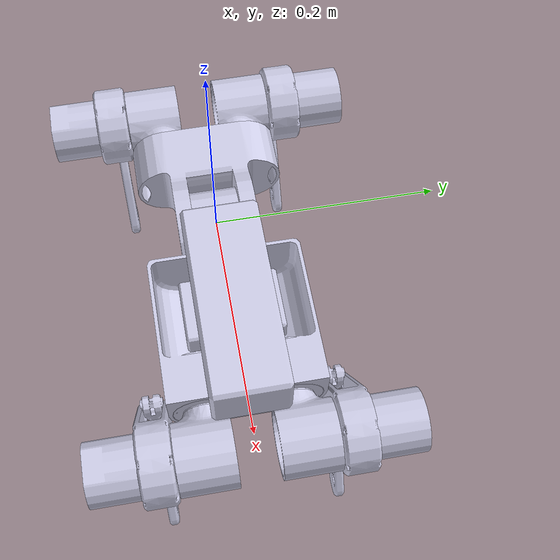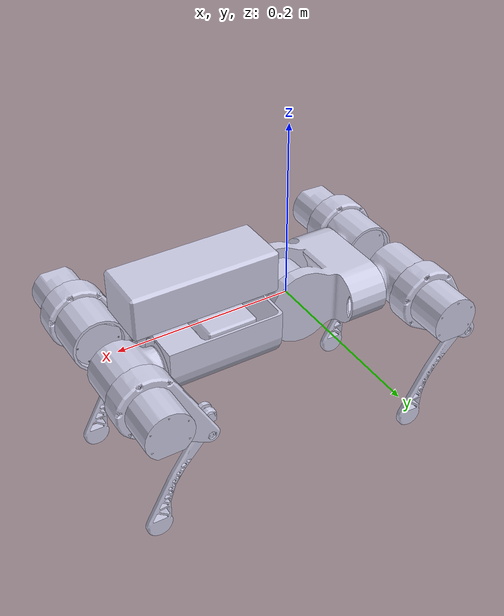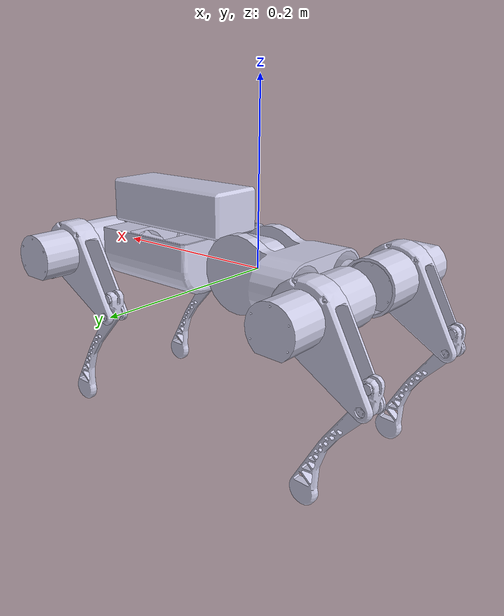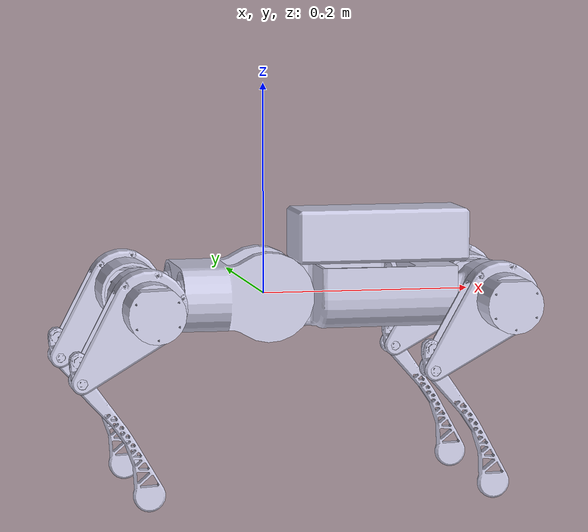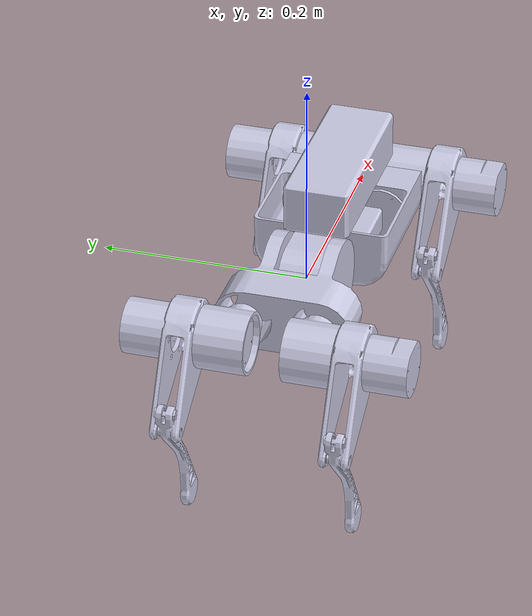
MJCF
<mujoco model="cheetah_1">
  <compiler angle="radian" meshdir="meshes/" autolimits="true"/>

  <default>
    <default class="cheetah_1">
      <default class="visual">
        <geom type="mesh" contype="0" conaffinity="0" group="2" material="dark"/>
      </default>
      <default class="collision">
        <geom group="3" type="capsule" contype="1" conaffinity="1"/>
      </default>
    </default>
  </default>

  <asset>
    <mesh name="body_front_link" file="body_front_link.stl"/>
    <mesh name="body_pitch_link" file="body_pitch_link.stl"/>
    <mesh name="spine_pitch_actuator" file="spine_pitch_actuator.stl"/>
    <mesh name="left_front_hip_roll_actuator" file="left_front_hip_roll_actuator.stl"/>
    <mesh name="right_front_hip_roll_actuator" file="right_front_hip_roll_actuator.stl"/>
    <mesh name="battery_link" file="battery_link.stl"/>
    <mesh name="bms_link" file="bms_link.stl"/>
    <mesh name="pc_link" file="pc_link.stl"/>
    <mesh name="left_front_hip_roll_link" file="left_front_hip_roll_link.stl"/>
    <mesh name="left_front_hip_pitch_link" file="left_front_hip_pitch_link.stl"/>
    <mesh name="left_front_knee_pitch_link" file="left_front_knee_pitch_link.stl"/>
    <mesh name="left_front_hip_pitch_actuator" file="left_front_hip_pitch_actuator.stl"/>
    <mesh name="left_front_knee_pitch_actuator" file="left_front_knee_pitch_actuator.stl"/>
    <mesh name="right_front_hip_roll_link" file="right_front_hip_roll_link.stl"/>
    <mesh name="right_front_hip_pitch_link" file="right_front_hip_pitch_link.stl"/>
    <mesh name="right_front_knee_pitch_link" file="right_front_knee_pitch_link.stl"/>
    <mesh name="right_front_hip_pitch_actuator" file="right_front_hip_pitch_actuator.stl"/>
    <mesh name="right_front_knee_pitch_actuator" file="right_front_knee_pitch_actuator.stl"/>
    <mesh name="left_hip_roll_link" file="left_hip_roll_link.stl"/>
    <mesh name="left_hip_pitch_link" file="left_hip_pitch_link.stl"/>
    <mesh name="left_knee_pitch_link" file="left_knee_pitch_link.stl"/>
    <mesh name="left_hip_pitch_actuator" file="left_hip_pitch_actuator.stl"/>
    <mesh name="left_knee_pitch_actuator" file="left_knee_pitch_actuator.stl"/>
    <mesh name="right_hip_roll_link" file="right_hip_roll_link.stl"/>
    <mesh name="right_hip_pitch_link" file="right_hip_pitch_link.stl"/>
    <mesh name="right_knee_pitch_link" file="right_knee_pitch_link.stl"/>
    <mesh name="right_hip_pitch_actuator" file="right_hip_pitch_actuator.stl"/>
    <mesh name="right_knee_pitch_actuator" file="right_knee_pitch_actuator.stl"/>
  </asset>

  <worldbody>
    <body name="body_front_link" pos="0 0 0" quat="1.0 0.0 0.0 0.0">
      <inertial pos="0.0954976191044652 -2.8127618750562647e-09 -0.0013255050308965738" mass="0.4074337733759366" quat="0.013752822991693484 1.6620105499176854e-08 0.9999054254577071 -2.493571172300956e-08" diaginertia="0.0006521374239635224 0.0015774590338208682 0.0018808895888569148"/>
      <geom type="mesh" mesh="body_front_link" group="0" contype="0" conaffinity="0" rgba="0.8 0.8 0.9 1"/>
      <geom name="body_front_link_collision_0" class="collision" type="box" size="0.085 0.035 0.01" pos="0.11 0 0.07" rgba="0 0 0.7 0.5"/>
      <geom name="body_front_link_collision_1" class="collision" type="cylinder" size="0.032 0.05" pos="0.11 0.035 0" euler="0 1.57 0" rgba="0 0 0.7 0.5"/>
      <geom name="body_front_link_collision_2" class="collision" type="cylinder" size="0.032 0.05" pos="0.11 -0.035 0" euler="0 1.57 0" rgba="0 0 0.7 0.5"/>
      <site name="imu" pos="0.1 0 0" group="5"/>
      <site name="head" pos="0.3 0 0" rgba="1 0 0 1" size="0.02" group="5"/>
      <freejoint name="floating_base_joint"/>
      <body name="body_pitch_link" pos="0.0 0.0 0.0" quat="1.0 0.0 0.0 0.0">
        <inertial pos="-0.027649431762743842 -3.752776116545206e-12 2.206169382102973e-12" mass="0.44170457726383566" quat="1.0 -1.4303396825818067e-09 1.216944041814955e-11 8.341423558821948e-11" diaginertia="0.0005436968070984438 0.0007411594880273456 0.00089611525850841"/>
        <geom type="mesh" mesh="body_pitch_link" group="0" contype="0" conaffinity="0" rgba="0.8 0.8 0.9 1"/>
        <geom name="body_pitch_link_collision_1" class="collision" type="cylinder" size="0.032 0.02" pos="-0.065 0.035 0" euler="0 1.57 0" rgba="0 0 0.7 0.5"/>
        <geom name="body_pitch_link_collision_2" class="collision" type="cylinder" size="0.032 0.02" pos="-0.065 -0.035 0" euler="0 1.57 0" rgba="0 0 0.7 0.5"/>
        <geom name="spine_collision" class="collision" type="sphere" size="0.055" pos="0 0 0" rgba="0 0 0.7 0.5"/>

        <joint name="body_pitch_joint" type="hinge" axis="0 1 0" range="-1 1"  armature="0.00089" frictionloss="0.01" damping="1.0" actuatorfrcrange="-17.0 17.0" stiffness="1.0" springref="0.0"  />

        <body name="left_hip_roll_link" pos="-0.08700000000000002 0.03600000000000017 -9.956824444577827e-63" quat="1.0 0.0 0.0 0.0">
          <inertial pos="-0.027997983370715348 0.004246170320840001 1.5960226731981128e-09" mass="0.05164362292808013" quat="0.7063740702082538 -0.7063743488668459 0.032178763180447205 -0.03217886574354496" diaginertia="2.582657600053341e-05 3.455590394722235e-05 4.296506602336842e-05"/>
          <geom type="mesh" mesh="left_hip_roll_link" group="0" contype="0" conaffinity="0" rgba="0.8 0.8 0.9 1"/>
          <joint name="left_hip_roll_joint" type="hinge" axis="1 0 0" range="-0.57 0.57" armature="0.00089" frictionloss="0.01" damping="0.1" actuatorfrcrange="-17.0 17.0"/>
          <body name="left_hip_pitch_link" pos="-0.035999999999999935 0.03050000000000011 1.5404344466674047e-18" quat="0.923879532511287 0.0 0.3826834323650894 0.0">
            <inertial pos="0.000608457167922225 0.012869188173909012 -0.020059873747473624" mass="0.09524690871689367" quat="-0.49739348019503443 0.48737401881355585 0.5025637349616855 0.5123436190159453" diaginertia="4.091951632713923e-05 0.00012807547862374872 0.00014646399871159844"/>
            <geom type="mesh" mesh="left_hip_pitch_link" group="0" contype="0" conaffinity="0" rgba="0.8 0.8 0.9 1"/>
            <joint name="left_hip_pitch_joint" type="hinge" axis="0 1 0" range="-1.57 1.57" armature="0.00089" frictionloss="0.01" damping="0.1" actuatorfrcrange="-17.0 17.0"/>
            <geom name="left_hip_pitch_link_collision_1" class="collision" type="capsule" size="0.025 0.040" pos="0 0.014 -0.040" rgba="0 0 0.7 0.5"/>
            <geom name="left_hip_pitch_link_collision_2" class="collision" type="cylinder" size="0.036 0.015" pos="0 0.014 0" euler="1.57 0 0" rgba="0 0 0.7 0.5"/>
            <body name="left_knee_pitch_link" pos="0.0027810046117813605 0.013500000000000376 -0.09195795785764961" quat="0.9990482215818578 0.0 0.04361938736533593 0.0">
              <inertial pos="0.023020942661646147 -2.722469951009998e-06 0.00030440480077486675" mass="0.04319852584138112" quat="0.0008317703971751127 0.09922227046188396 -0.00832134515504222 0.9950301525165988" diaginertia="3.0020026309073525e-06 0.000118097728213388 0.00011820690693985907"/>
              <geom type="mesh" mesh="left_knee_pitch_link" group="0" contype="0" conaffinity="0" rgba="0.8 0.8 0.9 1"/>
              <geom name="left_knee_pitch_link_collision_1" class="collision" type="capsule" size="0.01 0.05" pos="0.08 0 -0.01" euler="0 1.7 0" rgba="0 0 0.7 0.5"/>
              <geom name="left_knee_pitch_link_collision_2" class="collision" type="sphere" size="0.02" pos="0.12 0 -0.02" rgba="0 0 0.7 0.5"/>
              <joint name="left_knee_pitch_joint" type="hinge" axis="0 1 0" range="-1.1 0.57" armature="0.00089" frictionloss="0.01" damping="0.1" actuatorfrcrange="-17.0 17.0"/>
              <site name="RL" pos="0.12 0 -0.02" type="sphere" size="0.023" group="5"/>
            </body>
            <body name="left_knee_pitch_actuator" pos="5.452146062779414e-17 0.028000000000000087 6.3235473773489e-17" quat="0.923879532511287 0.0 -0.3826834323650894 0.0">
              <inertial pos="-9.498962391717215e-06 0.02056927011733872 0.00031409699200574993" mass="0.21064230113387258" quat="0.7763648004745358 0.630102536639915 -0.011736780053926638 0.009525644232507577" diaginertia="6.699672604688675e-05 6.832464716183116e-05 7.262836237033491e-05"/>
              <geom type="mesh" mesh="left_knee_pitch_actuator" group="0" contype="0" conaffinity="0" rgba="0.8 0.8 0.9 1"/>
              <geom name="left_knee_pitch_collision" class="collision" type="cylinder" size="0.0285 0.021" pos="0 .022 0" euler="1.57 0 0" rgba="0 0 0.7 0.5"/>
            </body>
          </body>
          <body name="left_hip_pitch_actuator" pos="-0.035999999999999935 0.03050000000000011 1.5404344466674047e-18" quat="1.0 0.0 0.0 0.0">
            <inertial pos="-7.105427357601002e-17 -0.021569270117338703 -0.0003142405936119352" mass="0.21064230113387258" quat="0.630174535012403 -0.776453511436391 -0.0 0.0" diaginertia="6.699672604688668e-05 6.832464716183102e-05 7.262836237033474e-05"/>
            <geom type="mesh" mesh="left_hip_pitch_actuator" group="0" contype="0" conaffinity="0" rgba="0.8 0.8 0.9 1"/>
          </body>
        </body>
        <body name="right_hip_roll_link" pos="-0.08700000000000012 -0.036000000000000004 0.0" quat="1.0 0.0 0.0 0.0">
          <inertial pos="-0.02799798337071539 -0.004246170320839682 -1.5960226857496609e-09" mass="0.05164362292808014" quat="0.7063740702082549 -0.7063743488668447 -0.032178763180446074 0.032178865743543734" diaginertia="2.582657600053341e-05 3.455590394722238e-05 4.296506602336849e-05"/>
          <geom type="mesh" mesh="right_hip_roll_link" group="0" contype="0" conaffinity="0" rgba="0.8 0.8 0.9 1"/>
          <joint name="right_hip_roll_joint" type="hinge" axis="1 0 0" range="-0.57 0.57" armature="0.00089" frictionloss="0.01" damping="0.1" actuatorfrcrange="-17.0 17.0"/>
          <body name="right_hip_pitch_link" pos="-0.036000000000000004 -0.0305 0.0" quat="0.923879532511287 0.0 0.3826834323650894 0.0">
            <inertial pos="0.0006048527896619849 -0.012869188173908686 -0.02005998275155355" mass="0.09524690871689367" quat="0.49737699491435766 0.4872987086749725 -0.5026385809812013 0.5123578342944233" diaginertia="4.0919516327139205e-05 0.00012807547862374858 0.00014646399871159815"/>
            <geom type="mesh" mesh="right_hip_pitch_link" group="0" contype="0" conaffinity="0" rgba="0.8 0.8 0.9 1"/>
            <joint name="right_hip_pitch_joint" type="hinge" axis="0 1 0" range="-1.57 1.57" armature="0.00089" frictionloss="0.01" damping="0.1" actuatorfrcrange="-17.0 17.0"/>
            <geom name="right_hip_pitch_link_collision_1" class="collision" type="capsule" size="0.025 0.040" pos="0 -0.014 -0.040" rgba="0 0 0.7 0.5"/>
            <geom name="right_hip_pitch_link_collision_2" class="collision" type="cylinder" size="0.036 0.015" pos="0 -0.014 0" euler="1.57 0 0" rgba="0 0 0.7 0.5"/>
            <body name="right_knee_pitch_link" pos="0.002781004611778939 -0.013500000000000002 -0.09195795785764849" quat="0.9990482215818578 0.0 0.04361938736533593 0.0">
              <inertial pos="0.028296380338980485 -0.0010023090814784866 -0.0007499099284968746" mass="0.05092994862679763" quat="0.7078725917191867 0.6994514342314173 0.07000035567349697 -0.06916672068241181" diaginertia="3.419795376083989e-06 0.00014910430409051972 0.00014925693202670216"/>
              <geom type="mesh" mesh="right_knee_pitch_link" group="0" contype="0" conaffinity="0" rgba="0.8 0.8 0.9 1"/>
              <geom name="right_knee_pitch_link_collision_1" class="collision" type="capsule" size="0.01 0.05" pos="0.08 0 -0.01" euler="0 1.7 0" rgba="0 0 0.7 0.5"/>
              <geom name="right_knee_pitch_link_collision_2" class="collision" type="sphere" size="0.02" pos="0.12 0 -0.02" rgba="0 0 0.7 0.5"/>
              <joint name="right_knee_pitch_joint" type="hinge" axis="0 1 0" range="-1.1 0.57" armature="0.00089" frictionloss="0.01" damping="0.1" actuatorfrcrange="-17.0 17.0"/>
              <site name="RR" pos="0.12 0 -0.02" type="sphere" size="0.023" group="5"/>
            </body>
            <body name="right_knee_pitch_actuator" pos="0.0 -0.028000000000000004 0.0" quat="0.923879532511287 0.0 -0.3826834323650894 0.0">
              <inertial pos="9.498962391447208e-06 -0.020569270117338563 -0.0003140969920059579" mass="0.21064230113387256" quat="0.7763648004745357 0.630102536639915 -0.011736780053928015 0.009525644232509673" diaginertia="6.699672604688671e-05 6.832464716183103e-05 7.262836237033483e-05"/>
              <geom type="mesh" mesh="right_knee_pitch_actuator" group="0" contype="0" conaffinity="0" rgba="0.8 0.8 0.9 1"/>
              <geom name="right_knee_pitch_collision" class="collision" type="cylinder" size="0.0285 0.021" pos="0 -.022 0" euler="1.57 0 0" rgba="0 0 0.7 0.5"/>
            </body>
          </body>
          <body name="right_hip_pitch_actuator" pos="-0.036000000000000004 -0.0305 0.0" quat="1.0 0.0 0.0 0.0">
            <inertial pos="-1.1368683772161603e-16 0.021569270117338946 0.00031424059361187594" mass="0.21064230113387258" quat="0.6301745350124043 -0.7764535114363899 -0.0 0.0" diaginertia="6.699672604688668e-05 6.832464716183109e-05 7.262836237033481e-05"/>
            <geom type="mesh" mesh="right_hip_pitch_actuator" group="0" contype="0" conaffinity="0" rgba="0.8 0.8 0.9 1"/>
          </body>
        </body>
      </body>
      <body name="spine_pitch_actuator" pos="-4.163336342344337e-17 0.021499999999999995 -3.3306690738756156e-19" quat="1.0 0.0 0.0 0.0">
        <inertial pos="-6.039613253960852e-17 -0.0215692701173387 -0.00031424059361190185" mass="0.21064230113387256" quat="0.6301745350124026 -0.7764535114363913 -0.0 0.0" diaginertia="6.699672604688668e-05 6.832464716183099e-05 7.262836237033472e-05"/>
        <geom type="mesh" mesh="spine_pitch_actuator" group="0" contype="0" conaffinity="0" rgba="0.8 0.8 0.9 1"/>
      </body>
      <body name="left_front_hip_roll_actuator" pos="0.17499999999999993 0.03599999999999927 -9.772448466566465e-17" quat="1.0 0.0 0.0 0.0">
        <inertial pos="-0.021569270117338734 0.00011999255657448061 -0.00029042888465210837" mass="0.2106423011338726" quat="0.3302093132902956 0.6252693894765341 0.4517991455355341 0.5439462584606635" diaginertia="6.699672604688672e-05 6.832464716183053e-05 7.262836237033424e-05"/>
        <geom type="mesh" mesh="left_front_hip_roll_actuator" group="0" contype="0" conaffinity="0" rgba="0.8 0.8 0.9 1"/>
      </body>
      <body name="right_front_hip_roll_actuator" pos="0.17499999999999988 -0.036000000000000004 0.0" quat="1.0 0.0 0.0 0.0">
        <inertial pos="-0.021569270117338904 0.00031424059361125957 -5.221679643874744e-19" mass="0.21064230113387258" quat="-0.07313948821198756 0.7033140232243976 0.07313948821198756 0.7033140232243976" diaginertia="6.699672604688698e-05 6.8324647161831e-05 7.2628362370335e-05"/>
        <geom type="mesh" mesh="right_front_hip_roll_actuator" group="0" contype="0" conaffinity="0" rgba="0.8 0.8 0.9 1"/>
      </body>
      <body name="battery_link" pos="0.11099999999999989 0.0 0.055" quat="1.0 0.0 0.0 0.0">
        <inertial pos="0.000602345370377293 4.75104256587456e-18 -3.977857780027705e-05" mass="1.1375068915472935" quat="1.0 0.0 0.0 0.0" diaginertia="0.000621565460268105 0.0028395019239491307 0.00298997901019473"/>
        <geom type="mesh" mesh="battery_link" group="0" contype="0" conaffinity="0" rgba="0.8 0.8 0.9 1"/>
        <body name="bms_link" pos="-0.02099999999999999 0.0 -0.07450000000000001" quat="1.0 0.0 0.0 0.0">
          <inertial pos="0.0 -5.007585429879787e-19 0.0" mass="0.26016719694830953" quat="-0.0 0.7071067811865475 0.7071067811865476 0.0" diaginertia="5.7813294215777606e-05 0.00012520197609485866 0.00017462831707059688"/>
          <geom type="mesh" mesh="bms_link" group="0" contype="0" conaffinity="0" rgba="0.8 0.8 0.9 1"/>
          <body name="pc_link" pos="0.0 0.0 0.024" quat="1.0 0.0 0.0 0.0">
            <inertial pos="0.0 -7.368035775833426e-19 1.7763568394002505e-17" mass="0.07698647540756227" quat="-0.0 0.7071067811865475 0.7071067811865476 0.0" diaginertia="2.3981376616872664e-05 5.0130562636015824e-05 6.614993277642808e-05"/>
            <geom type="mesh" mesh="pc_link" group="0" contype="0" conaffinity="0" rgba="0.8 0.8 0.9 1"/>
          </body>
        </body>
      </body>
      <body name="left_front_hip_roll_link" pos="0.17499999999999993 0.03599999999999927 -9.772448466566465e-17" quat="1.0 0.0 0.0 0.0">
        <inertial pos="0.027997983370715362 0.004246170320839767 -1.5960225681466575e-09" mass="0.05164362292808013" quat="0.7063743488668466 -0.7063740702082534 -0.032178865743543304 0.03217876318044538" diaginertia="2.582657600053341e-05 3.455590394722235e-05 4.2965066023368406e-05"/>
        <geom type="mesh" mesh="left_front_hip_roll_link" group="0" contype="0" conaffinity="0" rgba="0.8 0.8 0.9 1"/>
        <joint name="left_front_hip_roll_joint" type="hinge" axis="1 0 0" range="-0.57 0.57" armature="0.00089" frictionloss="0.01" damping="0.1" actuatorfrcrange="-17.0 17.0"/>
        <body name="left_front_hip_pitch_link" pos="0.0360000000000002 0.03049999999999982 1.0652300213581902e-16" quat="0.923879532511287 0.0 0.3826834323650894 0.0">
          <inertial pos="1.8030130706829795e-06 0.012869188173908985 -0.020069099422717812" mass="0.09524690871689367" quat="0.49506286156079515 0.50493334662682 -0.5049179945921037 0.4949877749041535" diaginertia="4.091951632713911e-05 0.00012807547862374834 0.00014646399871159758"/>
          <geom type="mesh" mesh="left_front_hip_pitch_link" group="0" contype="0" conaffinity="0" rgba="0.8 0.8 0.9 1"/>
          <geom name="left_front_hip_pitch_link_collision_1" class="collision" type="capsule" size="0.025 0.040" pos="0 0.014 -0.040" rgba="0 0 0.7 0.5"/>
          <geom name="left_front_hip_pitch_link_collision_2" class="collision" type="cylinder" size="0.036 0.015" pos="0 0.014 0" euler="1.57 0 0" rgba="0 0 0.7 0.5"/>
          <joint name="left_front_hip_pitch_joint" type="hinge" axis="0 1 0" range="-1.57 1.57" armature="0.00089" frictionloss="0.01" damping="0.1" actuatorfrcrange="-17.0 17.0"/>
          <body name="left_front_knee_pitch_link" pos="1.944871221118936e-16 0.013500000000000376 -0.09200000000000018" quat="0.9990482215818578 0.0 0.04361938736533593 0.0">
            <inertial pos="0.028260780953980463 -2.309081479253905e-06 -0.0016049190197943589" mass="0.05092994862679763" quat="0.7067335990767311 0.6983260048472837 0.08069247695834532 -0.07973164398410972" diaginertia="3.4197953760839355e-06 0.0001491043040905194 0.00014925693202670203"/>
            <geom type="mesh" mesh="left_front_knee_pitch_link" group="0" contype="0" conaffinity="0" rgba="0.8 0.8 0.9 1"/>
            <geom name="left_front_knee_pitch_link_collision_1" class="collision" type="capsule" size="0.01 0.05" pos="0.08 0 -0.01" euler="0 1.7 0" rgba="0 0 0.7 0.5"/>
            <geom name="left_front_knee_pitch_link_collision_2" class="collision" type="sphere" size="0.02" pos="0.12 0 -0.02" rgba="0 0 0.7 0.5"/>
            <joint name="left_front_knee_pitch_joint" type="hinge" axis="0 1 0" range="-1.1 0.57" armature="0.00089" frictionloss="0.01" damping="0.1" actuatorfrcrange="-17.0 17.0"/>
            <site name="FL" pos="0.12 0 -0.02" type="sphere" size="0.023" group="5"/>
          </body>
          <body name="left_front_knee_pitch_actuator" pos="9.416385383623259e-17 0.028000000000000032 -2.5117309970461037e-16" quat="0.923879532511287 0.0 -0.3826834323650894 0.0">
            <inertial pos="8.526512829121202e-17 0.020569270117338747 0.0003142405936119038" mass="0.21064230113387258" quat="0.6301745350124027 -0.7764535114363911 -0.0 0.0" diaginertia="6.699672604688668e-05 6.832464716183117e-05 7.26283623703349e-05"/>
            <geom type="mesh" mesh="left_front_knee_pitch_actuator" group="0" contype="0" conaffinity="0" rgba="0.8 0.8 0.9 1"/>
            <geom name="left_front_knee_pitch_collision" class="collision" type="cylinder" size="0.0285 0.021" pos="0 .022 0" euler="1.57 0 0" rgba="0 0 0.7 0.5"/>
          </body>
        </body>
        <body name="left_front_hip_pitch_actuator" pos="0.0360000000000002 0.03049999999999982 1.0652300213581902e-16" quat="1.0 0.0 0.0 0.0">
          <inertial pos="-8.526512829121202e-17 -0.021569270117338727 -0.0003142405936118616" mass="0.21064230113387256" quat="0.6301745350124028 -0.7764535114363912 -0.0 0.0" diaginertia="6.69967260468867e-05 6.832464716183129e-05 7.262836237033503e-05"/>
          <geom type="mesh" mesh="left_front_hip_pitch_actuator" group="0" contype="0" conaffinity="0" rgba="0.8 0.8 0.9 1"/>
        </body>
      </body>
      <body name="right_front_hip_roll_link" pos="0.17499999999999988 -0.036000000000000004 0.0" quat="1.0 0.0 0.0 0.0">
        <inertial pos="0.027997983370715105 -0.004246170320840697 1.5960227104402637e-09" mass="0.05164362292808013" quat="0.7063743488668427 -0.7063740702082569 0.03217886574354586 -0.03217876318044832" diaginertia="2.582657600053344e-05 3.4555903947222444e-05 4.296506602336849e-05"/>
        <geom type="mesh" mesh="right_front_hip_roll_link" group="0" contype="0" conaffinity="0" rgba="0.8 0.8 0.9 1"/>
        <joint name="right_front_hip_roll_joint" type="hinge" axis="1 0 0" range="-0.57 0.57" armature="0.00089" frictionloss="0.01" damping="0.1" actuatorfrcrange="-17.0 17.0"/>
        <body name="right_front_hip_pitch_link" pos="0.036000000000000004 -0.0305 0.0" quat="0.923879532511287 0.0 0.3826834323650894 0.0">
          <inertial pos="-1.8030130710862125e-06 -0.012869188173909866 -0.02006909942271748" mass="0.09524690871689367" quat="0.5049179945921045 0.49498777490415163 -0.4950628615607967 0.5049333466268197" diaginertia="4.0919516327139124e-05 0.00012807547862374842 0.0001464639987115978"/>
          <geom type="mesh" mesh="right_front_hip_pitch_link" group="0" contype="0" conaffinity="0" rgba="0.8 0.8 0.9 1"/>
          <geom name="right_front_hip_pitch_link_collision_1" class="collision" type="capsule" size="0.025 0.040" pos="0 -0.014 -0.040" rgba="0 0 0.7 0.5"/>
          <geom name="right_front_hip_pitch_link_collision_2" class="collision" type="cylinder" size="0.036 0.015" pos="0 -0.014 0" euler="1.57 0 0" rgba="0 0 0.7 0.5"/>
          <joint name="right_front_hip_pitch_joint" type="hinge" axis="0 1 0" range="-1.57 1.57" armature="0.00089" frictionloss="0.01" damping="0.1" actuatorfrcrange="-17.0 17.0"/>
          <body name="right_front_knee_pitch_link" pos="-6.879683875721005e-17 -0.013500000000000002 -0.09199999999999665" quat="0.9990482215818578 0.0 0.04361938736533593 0.0">
            <inertial pos="0.02826078095398056 -0.001002309081480618 -0.0016049190197975581" mass="0.05092994862679763" quat="0.7067335990767408 0.6983260048472739 0.08069247695834343 -0.07973164398411056" diaginertia="3.4197953760839452e-06 0.00014910430409051956 0.00014925693202670197"/>
            <geom type="mesh" mesh="right_front_knee_pitch_link" group="0" contype="0" conaffinity="0" rgba="0.8 0.8 0.9 1"/>
            <geom name="right_front_knee_pitch_link_collision_1" class="collision" type="capsule" size="0.01 0.05" pos="0.08 0 -0.01" euler="0 1.7 0" rgba="0 0 0.7 0.5"/>
            <geom name="right_front_knee_pitch_link_collision_2" class="collision" type="sphere" size="0.02" pos="0.12 0 -0.02" rgba="0 0 0.7 0.5"/>
            <joint name="right_front_knee_pitch_joint" type="hinge" axis="0 1 0" range="-1.1 0.57" armature="0.00089" frictionloss="0.01" damping="0.1" actuatorfrcrange="-17.0 17.0"/>
            <site name="FR" pos="0.12 0 -0.02" type="sphere" size="0.023" group="5"/>
          </body>
          <body name="right_front_knee_pitch_actuator" pos="0.0 -0.028000000000000004 0.0" quat="0.923879532511287 0.0 -0.3826834323650894 0.0">
            <inertial pos="-4.263256414560601e-16 -0.020569270117339628 -0.00031424059361120666" mass="0.21064230113387256" quat="0.6301745350123991 -0.7764535114363942 -0.0 0.0" diaginertia="6.69967260468867e-05 6.83246471618312e-05 7.262836237033495e-05"/>
            <geom type="mesh" mesh="right_front_knee_pitch_actuator" group="0" contype="0" conaffinity="0" rgba="0.8 0.8 0.9 1"/>
            <geom name="right_front_knee_pitch_collision" class="collision" type="cylinder" size="0.0285 0.021" pos="0 -.022 0" euler="1.57 0 0" rgba="0 0 0.7 0.5"/>
          </body>
        </body>
        <body name="right_front_hip_pitch_actuator" pos="0.036000000000000004 -0.0305 0.0" quat="1.0 0.0 0.0 0.0">
          <inertial pos="0.00017187205078730017 0.02156927011733784 -0.00026307251629850844" mass="0.21064230113387256" quat="0.1798101724925215 -0.22154852674434994 0.6039770247669289 0.7441749160777367" diaginertia="6.69967260468867e-05 6.8324647161831e-05 7.262836237033468e-05"/>
          <geom type="mesh" mesh="right_front_hip_pitch_actuator" group="0" contype="0" conaffinity="0" rgba="0.8 0.8 0.9 1"/>
        </body>
      </body>
    </body>
  </worldbody>

  <sensor>
    <gyro name="imu_ang_vel" site="imu"/>
    <velocimeter name="imu_lin_vel" site="imu"/>
    <accelerometer name="imu_lin_acc" site="imu"/>
    <framezaxis name="imu_upvector" objtype="body" objname="world" reftype="site" refname="imu"/>
    <subtreeangmom name="root_angmom" body="body_front_link"/>
  </sensor>

</mujoco>
